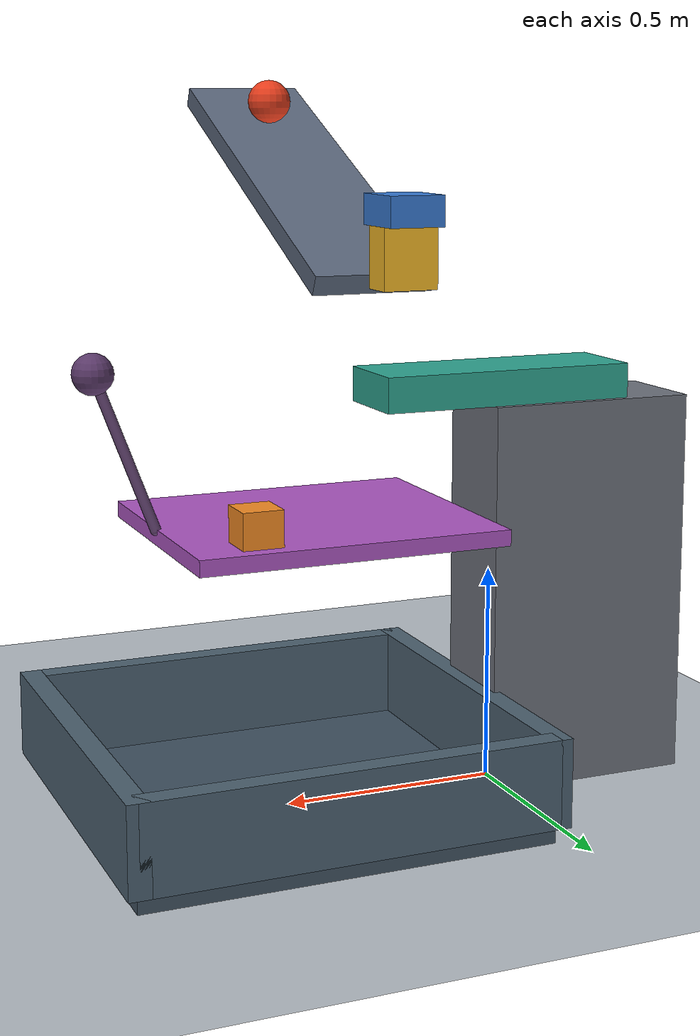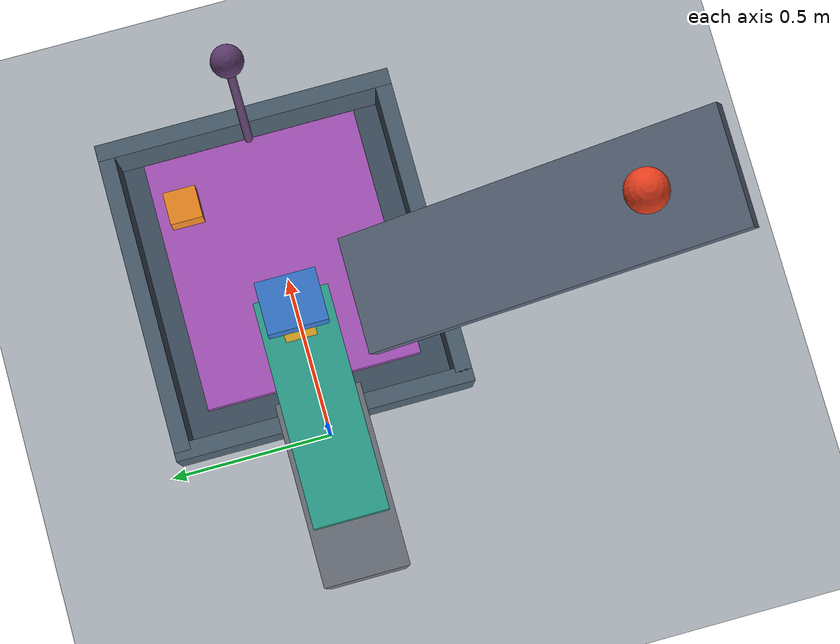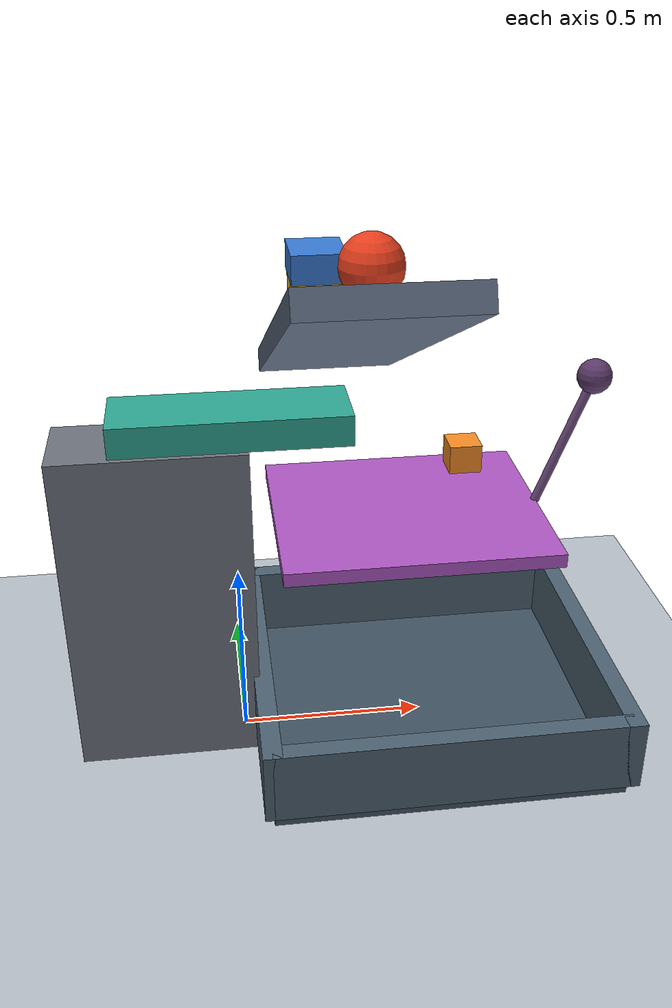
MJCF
<mujoco model="ball_key_bridge_chain">
  <compiler angle="degree" inertiafromgeom="true"/>
  <option timestep="0.002" gravity="0 0 -9.81" integrator="implicitfast" cone="elliptic" iterations="100"/>
  <size njmax="2000" nconmax="400"/>
  <statistic center="0.25 -0.25 0.85" extent="2.1"/>

  <visual>
    <headlight ambient="0.35 0.35 0.35" diffuse="0.7 0.7 0.7" specular="0.2 0.2 0.2"/>
  </visual>

  <worldbody>
    <light name="overhead" pos="0 -1 4" dir="0 0 -1" diffuse="0.8 0.8 0.8"/>
    <geom name="floor" type="plane" pos="0 0 0" size="4 4 0.1" friction="0.8 0.01 0.01" condim="6" rgba="0.72 0.75 0.78 1"/>

    <!-- The ball starts 0.8 m along the ramp above its downhill edge. -->
    <body name="ramp" pos="0.22 -0.613715 1.368651" euler="-25 0 0">
      <geom name="ramp_deck" type="box" size="0.15 0.50 0.025" friction="0.65 0.005 0.001" condim="6" rgba="0.35 0.40 0.48 1"/>
    </body>

    <body name="ball" pos="0.22 -0.851802 1.567942">
      <freejoint name="ball_free"/>
      <geom name="ball_sphere" type="sphere" size="0.055" mass="0.6" friction="0.65 0.005 0.003" condim="6" solref="0.006 1" rgba="0.92 0.25 0.12 1"/>
    </body>

    <!-- The key withdraws sideways from under bridge1 when struck. -->
    <body name="key" pos="0.22 0 1.23">
      <joint name="key_slide" type="slide" axis="0 1 0" limited="true" range="0 0.30" damping="0.04" frictionloss="0.01" solreflimit="0.004 1"/>
      <geom name="key_support" type="box" size="0.065 0.04 0.07" mass="0.06" friction="0.02 0.001 0.0001" solref="0.006 1" rgba="0.96 0.73 0.15 1"/>
    </body>

    <body name="bridge1" pos="0.22 0 1.335">
      <freejoint name="bridge1_free"/>
      <geom name="bridge1_block" type="box" size="0.065 0.075 0.035" mass="1.4" friction="1.2 0.005 0.001" solref="0.006 1" rgba="0.22 0.48 0.83 1"/>
    </body>

    <!-- Bridge2's center of mass begins just inside the pedestal edge. -->
    <body name="bridge2_pedestal" pos="-0.205 0 0.45">
      <geom name="bridge2_pedestal_block" type="box" size="0.245 0.115 0.45" friction="0.8 0.005 0.001" rgba="0.43 0.45 0.49 1"/>
    </body>

    <body name="bridge2" pos="0 0 0.94">
      <freejoint name="bridge2_free"/>
      <geom name="bridge2_block" type="box" size="0.30 0.10 0.04" mass="0.8" friction="1.2 0.005 0.001" solref="0.006 1" rgba="0.18 0.65 0.57 1"/>
    </body>

    <body name="flap" pos="0.80 0 0.65">
      <joint name="flap_hinge" type="hinge" axis="0 1 0" limited="true" range="-50 0" damping="0.06" armature="0.002" solreflimit="0.004 1" solimplimit="0.98 0.995 0.001"/>
      <geom name="flap_shelf" type="box" pos="-0.35 0 0" size="0.35 0.30 0.018" mass="0.2" friction="0.4 0.005 0.001" solref="0.006 1" rgba="0.68 0.34 0.76 1"/>
      <geom name="flap_counterweight_arm" type="capsule" fromto="0 0 0.015 0.13 0 0.36" size="0.012" mass="0.025" friction="0.4 0.005 0.001" rgba="0.42 0.29 0.48 1"/>
      <geom name="flap_counterweight" type="sphere" pos="0.13 0 0.36" size="0.045" mass="1.2" friction="0.4 0.005 0.001" rgba="0.36 0.23 0.42 1"/>
    </body>

    <!-- Offset across the shelf to separate the payload from the bridges. -->
    <body name="payload" pos="0.65 0.22 0.708">
      <freejoint name="payload_free"/>
      <geom name="payload_block" type="box" size="0.045 0.045 0.04" mass="0.16" friction="0.4 0.005 0.001" solref="0.006 1" rgba="0.96 0.55 0.14 1"/>
    </body>

    <body name="bin" pos="0 0 0">
      <geom name="bin_bottom" type="box" pos="0.515 0 0.02" size="0.465 0.43 0.02" friction="0.8 0.01 0.01" condim="6" rgba="0.25 0.32 0.38 1"/>
      <geom name="bin_left_wall" type="box" pos="0.05 0 0.14" size="0.025 0.455 0.10" friction="0.8 0.01 0.01" condim="6" rgba="0.30 0.38 0.44 1"/>
      <geom name="bin_right_wall" type="box" pos="0.98 0 0.14" size="0.025 0.455 0.10" friction="0.8 0.01 0.01" condim="6" rgba="0.30 0.38 0.44 1"/>
      <geom name="bin_front_wall" type="box" pos="0.515 -0.43 0.14" size="0.465 0.025 0.10" friction="0.8 0.01 0.01" condim="6" rgba="0.30 0.38 0.44 1"/>
      <geom name="bin_back_wall" type="box" pos="0.515 0.43 0.14" size="0.465 0.025 0.10" friction="0.8 0.01 0.01" condim="6" rgba="0.30 0.38 0.44 1"/>
    </body>
  </worldbody>

  <contact>
    <pair name="withdrawable_support_contact" geom1="key_support" geom2="bridge1_block" condim="3" friction="0.02 0.02 0.001 0.0001 0.0001" solref="0.006 1"/>
  </contact>

  <keyframe>
    <key name="start"/>
  </keyframe>
</mujoco>
